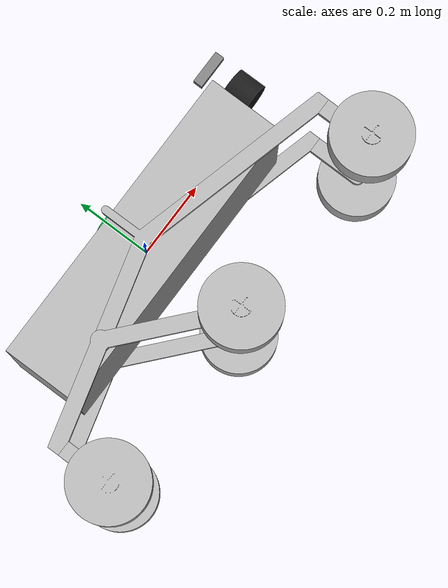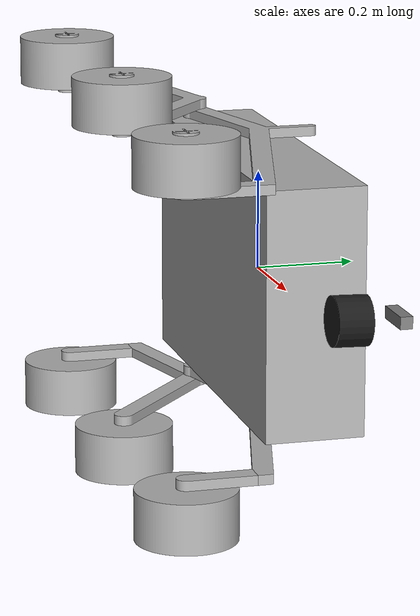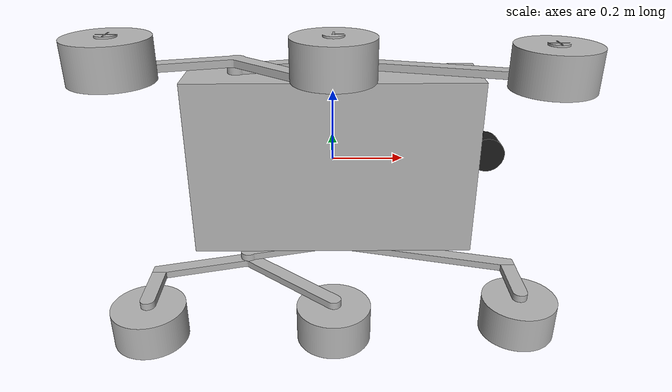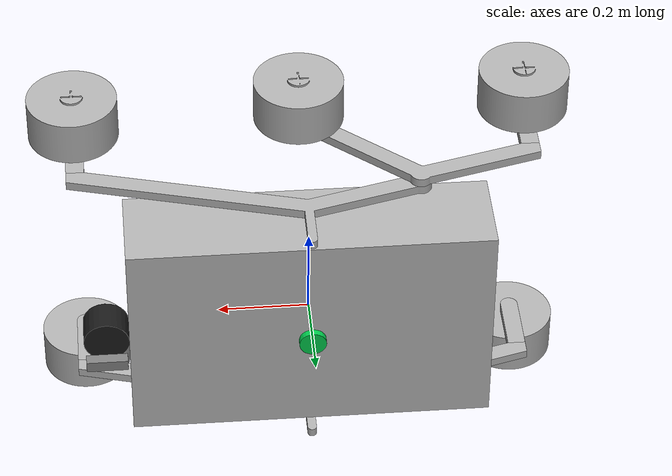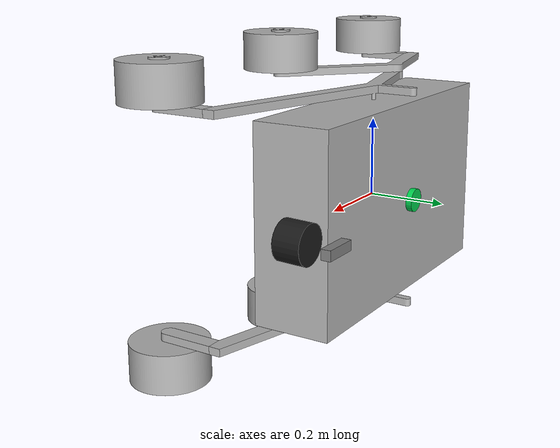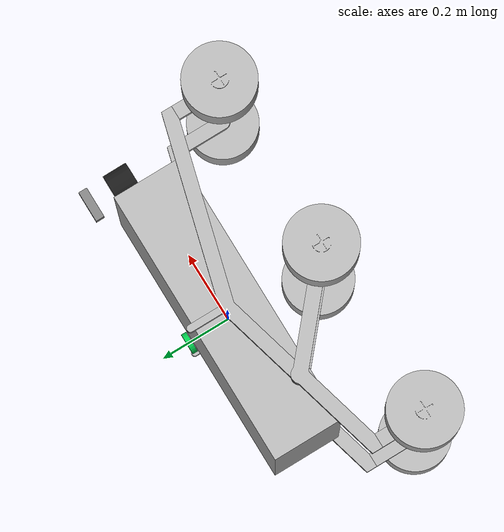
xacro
<?xml version="1.0" ?>
<robot name="mini_model" xmlns:xacro="http://www.ros.org/wiki/xacro">

<xacro:include filename="$(find mini_model_description)/urdf/materials.xacro" />
<xacro:include filename="$(find mini_model_description)/urdf/mini_model.gazebo" />

<!-- Include sensor definitions for autonomous navigation -->
<xacro:include filename="$(find mini_model_description)/urdf/sensors.xacro" />
<xacro:include filename="$(find mini_model_description)/urdf/sensors.gazebo" />

<link name="base_link">
  <inertial>
    <origin xyz="0.0 0.0 0.0" rpy="0 0 0"/>
    <mass value="628.0"/>
    <inertia ixx="15.176667" iyy="46.576667" izz="35.586667" ixy="0.0" iyz="0.0" ixz="0.0"/>
  </inertial>
  <visual>
    <origin xyz="0 0 0" rpy="0 0 0"/>
    <geometry>
      <mesh filename="file://$(find mini_model_description)/meshes/base_link.stl" scale="0.001 0.001 0.001"/>
    </geometry>
    <material name="silver"/>
  </visual>
  <collision>
    <origin xyz="0 0 0" rpy="0 0 0"/>
    <geometry>
      <mesh filename="file://$(find mini_model_description)/meshes/base_link.stl" scale="0.001 0.001 0.001"/>
    </geometry>
  </collision>
</link>

<link name="component__8__1">
  <inertial>
    <origin xyz="0.1134912204829699 -0.05030777295699913 0.029954747066772536" rpy="0 0 0"/>
    <mass value="5.449702499230522"/>
    <inertia ixx="0.013083" iyy="0.270388" izz="0.283097" ixy="0.036122" iyz="1.2e-05" ixz="-2.8e-05"/>
  </inertial>
  <visual>
    <origin xyz="-0.0 -0.0 -0.25" rpy="0 0 0"/>
    <geometry>
      <mesh filename="file://$(find mini_model_description)/meshes/component__8__1.stl" scale="0.001 0.001 0.001"/>
    </geometry>
    <material name="silver"/>
  </visual>
  <collision>
    <origin xyz="-0.0 -0.0 -0.25" rpy="0 0 0"/>
    <geometry>
      <mesh filename="file://$(find mini_model_description)/meshes/component__8__1.stl" scale="0.001 0.001 0.001"/>
    </geometry>
  </collision>
</link>

<link name="component__1__1">
  <inertial>
    <origin xyz="0.014564589996318489 -0.07826500014971428 0.010000000000000009" rpy="0 0 0"/>
    <mass value="3.923134667678356"/>
    <inertia ixx="0.016852" iyy="0.089659" izz="0.106249" ixy="0.027919" iyz="-0.0" ixz="0.0"/>
  </inertial>
  <visual>
    <origin xyz="0.25 0.066987 -0.29" rpy="0 0 0"/>
    <geometry>
      <mesh filename="file://$(find mini_model_description)/meshes/component__1__1.stl" scale="0.001 0.001 0.001"/>
    </geometry>
    <material name="silver"/>
  </visual>
  <collision>
    <origin xyz="0.25 0.066987 -0.29" rpy="0 0 0"/>
    <geometry>
      <mesh filename="file://$(find mini_model_description)/meshes/component__1__1.stl" scale="0.001 0.001 0.001"/>
    </geometry>
  </collision>
</link>

<link name="component__2__1">
  <inertial>
    <origin xyz="8.326672684688674e-16 -0.07524710992668415 0.0" rpy="0 0 0"/>
    <mass value="0.9442697396325618"/>
    <inertia ixx="0.00182" iyy="0.000154" izz="0.001911" ixy="0.0" iyz="-0.0" ixz="-0.0"/>
  </inertial>
  <visual>
    <origin xyz="0.5 0.149321 -0.3" rpy="0 0 0"/>
    <geometry>
      <mesh filename="file://$(find mini_model_description)/meshes/component__2__1.stl" scale="0.001 0.001 0.001"/>
    </geometry>
    <material name="silver"/>
  </visual>
  <collision>
    <origin xyz="0.5 0.149321 -0.3" rpy="0 0 0"/>
    <geometry>
      <mesh filename="file://$(find mini_model_description)/meshes/component__2__1.stl" scale="0.001 0.001 0.001"/>
    </geometry>
  </collision>
</link>

<link name="component__3__1">
  <inertial>
    <origin xyz="-1.3322676295501878e-15 -0.07524710992668368 0.0" rpy="0 0 0"/>
    <mass value="0.9442697396325564"/>
    <inertia ixx="0.00182" iyy="0.000154" izz="0.001911" ixy="0.0" iyz="0.0" ixz="0.0"/>
  </inertial>
  <visual>
    <origin xyz="-0.5 0.149321 -0.28" rpy="0 0 0"/>
    <geometry>
      <mesh filename="file://$(find mini_model_description)/meshes/component__3__1.stl" scale="0.001 0.001 0.001"/>
    </geometry>
    <material name="silver"/>
  </visual>
  <collision>
    <origin xyz="-0.5 0.149321 -0.28" rpy="0 0 0"/>
    <geometry>
      <mesh filename="file://$(find mini_model_description)/meshes/component__3__1.stl" scale="0.001 0.001 0.001"/>
    </geometry>
  </collision>
</link>

<link name="component__4__1">
  <inertial>
    <origin xyz="8.326672684688674e-16 4.037844391069356e-07 0.050132954214166414" rpy="0 0 0"/>
    <mass value="24.72411519366146"/>
    <inertia ixx="0.082388" iyy="0.082388" izz="0.123329" ixy="0.0" iyz="0.0" ixz="0.0"/>
  </inertial>
  <visual>
    <origin xyz="0.5 0.283975 -0.31" rpy="0 0 0"/>
    <geometry>
      <mesh filename="file://$(find mini_model_description)/meshes/component__4__1.stl" scale="0.001 0.001 0.001"/>
    </geometry>
    <material name="silver"/>
  </visual>
  <collision>
    <origin xyz="0.5 0.283975 -0.31" rpy="0 0 0"/>
    <geometry>
      <mesh filename="file://$(find mini_model_description)/meshes/component__4__1.stl" scale="0.001 0.001 0.001"/>
    </geometry>
  </collision>
</link>

<link name="component__5__1">
  <inertial>
    <origin xyz="-3.003187247395517e-16 4.0378443955102483e-07 0.050132954214166414" rpy="0 0 0"/>
    <mass value="24.724115193661465"/>
    <inertia ixx="0.082388" iyy="0.082388" izz="0.123329" ixy="0.0" iyz="0.0" ixz="0.0"/>
  </inertial>
  <visual>
    <origin xyz="0.0 0.283975 -0.31" rpy="0 0 0"/>
    <geometry>
      <mesh filename="file://$(find mini_model_description)/meshes/component__5__1.stl" scale="0.001 0.001 0.001"/>
    </geometry>
    <material name="silver"/>
  </visual>
  <collision>
    <origin xyz="0.0 0.283975 -0.31" rpy="0 0 0"/>
    <geometry>
      <mesh filename="file://$(find mini_model_description)/meshes/component__5__1.stl" scale="0.001 0.001 0.001"/>
    </geometry>
  </collision>
</link>

<link name="component__6__1">
  <inertial>
    <origin xyz="-1.4432899320127035e-15 4.037844399396029e-07 0.05013295421416647" rpy="0 0 0"/>
    <mass value="24.72411519366146"/>
    <inertia ixx="0.082388" iyy="0.082388" izz="0.123329" ixy="0.0" iyz="-0.0" ixz="0.0"/>
  </inertial>
  <visual>
    <origin xyz="-0.5 0.283975 -0.29" rpy="0 0 0"/>
    <geometry>
      <mesh filename="file://$(find mini_model_description)/meshes/component__6__1.stl" scale="0.001 0.001 0.001"/>
    </geometry>
    <material name="silver"/>
  </visual>
  <collision>
    <origin xyz="-0.5 0.283975 -0.29" rpy="0 0 0"/>
    <geometry>
      <mesh filename="file://$(find mini_model_description)/meshes/component__6__1.stl" scale="0.001 0.001 0.001"/>
    </geometry>
  </collision>
</link>

<link name="component__7__1">
  <inertial>
    <origin xyz="0.11349122048296997 -0.0503077729569992 -0.02995474706677259" rpy="0 0 0"/>
    <mass value="5.449702499230521"/>
    <inertia ixx="0.013083" iyy="0.270388" izz="0.283097" ixy="0.036122" iyz="-1.2e-05" ixz="2.8e-05"/>
  </inertial>
  <visual>
    <origin xyz="-0.0 -0.0 0.25" rpy="0 0 0"/>
    <geometry>
      <mesh filename="file://$(find mini_model_description)/meshes/component__7__1.stl" scale="0.001 0.001 0.001"/>
    </geometry>
    <material name="silver"/>
  </visual>
  <collision>
    <origin xyz="-0.0 -0.0 0.25" rpy="0 0 0"/>
    <geometry>
      <mesh filename="file://$(find mini_model_description)/meshes/component__7__1.stl" scale="0.001 0.001 0.001"/>
    </geometry>
  </collision>
</link>

<link name="component__9__1">
  <inertial>
    <origin xyz="0.014564589996318461 -0.07826500014971409 -0.010000000000000064" rpy="0 0 0"/>
    <mass value="3.9231346676783514"/>
    <inertia ixx="0.016852" iyy="0.089659" izz="0.106249" ixy="0.027919" iyz="0.0" ixz="0.0"/>
  </inertial>
  <visual>
    <origin xyz="0.25 0.066987 0.29" rpy="0 0 0"/>
    <geometry>
      <mesh filename="file://$(find mini_model_description)/meshes/component__9__1.stl" scale="0.001 0.001 0.001"/>
    </geometry>
    <material name="silver"/>
  </visual>
  <collision>
    <origin xyz="0.25 0.066987 0.29" rpy="0 0 0"/>
    <geometry>
      <mesh filename="file://$(find mini_model_description)/meshes/component__9__1.stl" scale="0.001 0.001 0.001"/>
    </geometry>
  </collision>
</link>

<link name="component__11__1">
  <inertial>
    <origin xyz="-1.3322676295501878e-15 -0.07524710992668368 0.0" rpy="0 0 0"/>
    <mass value="0.9442697396325564"/>
    <inertia ixx="0.00182" iyy="0.000154" izz="0.001911" ixy="0.0" iyz="0.0" ixz="-0.0"/>
  </inertial>
  <visual>
    <origin xyz="-0.5 0.149321 0.28" rpy="0 0 0"/>
    <geometry>
      <mesh filename="file://$(find mini_model_description)/meshes/component__11__1.stl" scale="0.001 0.001 0.001"/>
    </geometry>
    <material name="silver"/>
  </visual>
  <collision>
    <origin xyz="-0.5 0.149321 0.28" rpy="0 0 0"/>
    <geometry>
      <mesh filename="file://$(find mini_model_description)/meshes/component__11__1.stl" scale="0.001 0.001 0.001"/>
    </geometry>
  </collision>
</link>

<link name="component__10__1">
  <inertial>
    <origin xyz="8.326672684688674e-16 -0.07524710992668415 0.0" rpy="0 0 0"/>
    <mass value="0.9442697396325618"/>
    <inertia ixx="0.00182" iyy="0.000154" izz="0.001911" ixy="0.0" iyz="-0.0" ixz="0.0"/>
  </inertial>
  <visual>
    <origin xyz="0.5 0.149321 0.3" rpy="0 0 0"/>
    <geometry>
      <mesh filename="file://$(find mini_model_description)/meshes/component__10__1.stl" scale="0.001 0.001 0.001"/>
    </geometry>
    <material name="silver"/>
  </visual>
  <collision>
    <origin xyz="0.5 0.149321 0.3" rpy="0 0 0"/>
    <geometry>
      <mesh filename="file://$(find mini_model_description)/meshes/component__10__1.stl" scale="0.001 0.001 0.001"/>
    </geometry>
  </collision>
</link>

<link name="component__14__1">
  <inertial>
    <origin xyz="6.772360450213455e-15 4.037844399396029e-07 -0.05013295421416647" rpy="0 0 0"/>
    <mass value="24.72411519366147"/>
    <inertia ixx="0.082388" iyy="0.082388" izz="0.123329" ixy="0.0" iyz="0.0" ixz="0.0"/>
  </inertial>
  <visual>
    <origin xyz="-0.5 0.283975 0.29" rpy="0 0 0"/>
    <geometry>
      <mesh filename="file://$(find mini_model_description)/meshes/component__14__1.stl" scale="0.001 0.001 0.001"/>
    </geometry>
    <material name="silver"/>
  </visual>
  <collision>
    <origin xyz="-0.5 0.283975 0.29" rpy="0 0 0"/>
    <geometry>
      <mesh filename="file://$(find mini_model_description)/meshes/component__14__1.stl" scale="0.001 0.001 0.001"/>
    </geometry>
  </collision>
</link>

<link name="component__13__1">
  <inertial>
    <origin xyz="7.866040444139796e-15 4.03784439606536e-07 -0.050132954214166414" rpy="0 0 0"/>
    <mass value="24.724115193661465"/>
    <inertia ixx="0.082388" iyy="0.082388" izz="0.123329" ixy="0.0" iyz="-0.0" ixz="0.0"/>
  </inertial>
  <visual>
    <origin xyz="0.0 0.283975 0.31" rpy="0 0 0"/>
    <geometry>
      <mesh filename="file://$(find mini_model_description)/meshes/component__13__1.stl" scale="0.001 0.001 0.001"/>
    </geometry>
    <material name="silver"/>
  </visual>
  <collision>
    <origin xyz="0.0 0.283975 0.31" rpy="0 0 0"/>
    <geometry>
      <mesh filename="file://$(find mini_model_description)/meshes/component__13__1.stl" scale="0.001 0.001 0.001"/>
    </geometry>
  </collision>
</link>

<link name="component__12__1">
  <inertial>
    <origin xyz="9.048317650695026e-15 4.0378443905142447e-07 -0.050132954214166525" rpy="0 0 0"/>
    <mass value="24.72411519366147"/>
    <inertia ixx="0.082388" iyy="0.082388" izz="0.123329" ixy="0.0" iyz="0.0" ixz="0.0"/>
  </inertial>
  <visual>
    <origin xyz="0.5 0.283975 0.31" rpy="0 0 0"/>
    <geometry>
      <mesh filename="file://$(find mini_model_description)/meshes/component__12__1.stl" scale="0.001 0.001 0.001"/>
    </geometry>
    <material name="silver"/>
  </visual>
  <collision>
    <origin xyz="0.5 0.283975 0.31" rpy="0 0 0"/>
    <geometry>
      <mesh filename="file://$(find mini_model_description)/meshes/component__12__1.stl" scale="0.001 0.001 0.001"/>
    </geometry>
  </collision>
</link>

<joint name="Revolute 25" type="revolute">
  <origin xyz="0.0 0.0 0.25" rpy="0 0 0"/>
  <parent link="base_link"/>
  <child link="component__8__1"/>
  <axis xyz="0.0 0.0 1.0"/>
  <limit upper="0.523599" lower="-0.523599" effort="100" velocity="100"/>
</joint>

<joint name="Revolute 26" type="revolute">
  <origin xyz="-0.25 -0.066987 0.04" rpy="0 0 0"/>
  <parent link="component__8__1"/>
  <child link="component__1__1"/>
  <axis xyz="0.0 0.0 1.0"/>
  <limit upper="0.523599" lower="-0.523599" effort="100" velocity="100"/>
</joint>

<joint name="Revolute 27" type="revolute">
  <origin xyz="-0.25 -0.082334 0.01" rpy="0 0 0"/>
  <parent link="component__1__1"/>
  <child link="component__2__1"/>
  <axis xyz="0.0 -1.0 0.0"/>
  <limit upper="0.785398" lower="-0.785398" effort="500" velocity="100"/>
  <dynamics damping="50.0" friction="3.5"/>
</joint>

<joint name="Revolute 28" type="revolute">
  <origin xyz="0.5 -0.149321 0.03" rpy="0 0 0"/>
  <parent link="component__8__1"/>
  <child link="component__3__1"/>
  <axis xyz="0.0 -1.0 0.0"/>
  <limit upper="0.785398" lower="-0.785398" effort="500" velocity="100"/>
  <dynamics damping="50.0" friction="3.5"/>
</joint>

<joint name="Revolute 29" type="continuous">
  <origin xyz="0.0 -0.134654 0.01" rpy="0 0 0"/>
  <parent link="component__2__1"/>
  <child link="component__4__1"/>
  <axis xyz="0.0 0.0 1.0"/>
</joint>

<joint name="Revolute 30" type="continuous">
  <origin xyz="0.25 -0.216988 0.02" rpy="0 0 0"/>
  <parent link="component__1__1"/>
  <child link="component__5__1"/>
  <axis xyz="0.0 0.0 1.0"/>
</joint>

<joint name="Revolute 31" type="continuous">
  <origin xyz="0.0 -0.134654 0.01" rpy="0 0 0"/>
  <parent link="component__3__1"/>
  <child link="component__6__1"/>
  <axis xyz="0.0 0.0 1.0"/>
</joint>

<joint name="Revolute 32" type="revolute">
  <origin xyz="0.0 0.0 -0.25" rpy="0 0 0"/>
  <parent link="base_link"/>
  <child link="component__7__1"/>
  <axis xyz="0.0 0.0 -1.0"/>
  <limit upper="0.523599" lower="-0.523599" effort="100" velocity="100"/>
</joint>

<joint name="Revolute 33" type="revolute">
  <origin xyz="-0.25 -0.066987 -0.04" rpy="0 0 0"/>
  <parent link="component__7__1"/>
  <child link="component__9__1"/>
  <axis xyz="0.0 0.0 -1.0"/>
  <limit upper="0.523599" lower="-0.523599" effort="100" velocity="100"/>
</joint>

<joint name="Revolute 34" type="revolute">
  <origin xyz="0.5 -0.149321 -0.03" rpy="0 0 0"/>
  <parent link="component__7__1"/>
  <child link="component__11__1"/>
  <axis xyz="0.0 -1.0 0.0"/>
  <limit upper="0.785398" lower="-0.785398" effort="500" velocity="100"/>
  <dynamics damping="50.0" friction="3.5"/>
</joint>

<joint name="Revolute 35" type="revolute">
  <origin xyz="-0.25 -0.082334 -0.01" rpy="0 0 0"/>
  <parent link="component__9__1"/>
  <child link="component__10__1"/>
  <axis xyz="0.0 -1.0 0.0"/>
  <limit upper="0.785398" lower="-0.785398" effort="500" velocity="100"/>
  <dynamics damping="50.0" friction="3.5"/>
</joint>

<joint name="Revolute 36" type="continuous">
  <origin xyz="0.0 -0.134654 -0.01" rpy="0 0 0"/>
  <parent link="component__11__1"/>
  <child link="component__14__1"/>
  <axis xyz="0.0 0.0 -1.0"/>
</joint>

<joint name="Revolute 37" type="continuous">
  <origin xyz="0.25 -0.216988 -0.02" rpy="0 0 0"/>
  <parent link="component__9__1"/>
  <child link="component__13__1"/>
  <axis xyz="0.0 0.0 -1.0"/>
</joint>

<joint name="Revolute 38" type="continuous">
  <origin xyz="0.0 -0.134654 -0.01" rpy="0 0 0"/>
  <parent link="component__10__1"/>
  <child link="component__12__1"/>
  <axis xyz="0.0 0.0 -1.0"/>
</joint>

<!-- ROS 2 Control Hardware Interface -->
<ros2_control name="GazeboSimSystem" type="system">
  <hardware>
    <plugin>gz_ros2_control/GazeboSimSystem</plugin>
  </hardware>

  <!-- PASSIVE SUSPENSION JOINTS (State Interface Only) -->
  <!-- Right Differential Joint -->
  <joint name="Revolute 25">
    <command_interface name="position">
      <param name="min">-0.523599</param>
      <param name="max">0.523599</param>
    </command_interface>
    <state_interface name="position"/>
    <state_interface name="velocity"/>
  </joint>

  <!-- Right Bogie Pivot Joint -->
  <joint name="Revolute 26">
    <command_interface name="position">
      <param name="min">-0.523599</param>
      <param name="max">0.523599</param>
    </command_interface>
    <state_interface name="position"/>
    <state_interface name="velocity"/>
  </joint>

  <!-- Left Differential Joint -->
  <joint name="Revolute 32">
    <command_interface name="position">
      <param name="min">-0.523599</param>
      <param name="max">0.523599</param>
    </command_interface>
    <state_interface name="position"/>
    <state_interface name="velocity"/>
  </joint>

  <!-- Left Bogie Pivot Joint -->
  <joint name="Revolute 33">
    <command_interface name="position">
      <param name="min">-0.523599</param>
      <param name="max">0.523599</param>
    </command_interface>
    <state_interface name="position"/>
    <state_interface name="velocity"/>
  </joint>

  <!-- STEERING JOINTS (Position Command Interface) -->
  <!-- Rear Right Wheel Steering -->
  <joint name="Revolute 27">
    <command_interface name="position">
      <param name="min">-0.785398</param>
      <param name="max">0.785398</param>
      <param name="p">80.0</param>
      <param name="i">1.5</param>
      <param name="d">10.0</param>
    </command_interface>
    <state_interface name="position"/>
    <state_interface name="velocity"/>
  </joint>

  <!-- Front Right Wheel Steering -->
  <joint name="Revolute 28">
    <command_interface name="position">
      <param name="min">-0.785398</param>
      <param name="max">0.785398</param>
      <param name="p">80.0</param>
      <param name="i">1.5</param>
      <param name="d">10.0</param>
    </command_interface>
    <state_interface name="position"/>
    <state_interface name="velocity"/>
  </joint>

  <!-- Front Left Wheel Steering -->
  <joint name="Revolute 34">
    <command_interface name="position">
      <param name="min">-0.785398</param>
      <param name="max">0.785398</param>
      <param name="p">80.0</param>
      <param name="i">1.5</param>
      <param name="d">10.0</param>
    </command_interface>
    <state_interface name="position"/>
    <state_interface name="velocity"/>
  </joint>

  <!-- Rear Left Wheel Steering -->
  <joint name="Revolute 35">
    <command_interface name="position">
      <param name="min">-0.785398</param>
      <param name="max">0.785398</param>
      <param name="p">80.0</param>
      <param name="i">1.5</param>
      <param name="d">10.0</param>
    </command_interface>
    <state_interface name="position"/>
    <state_interface name="velocity"/>
  </joint>

  <!-- DRIVE JOINTS (Velocity Command Interface) -->
  <!-- Rear Right Wheel Drive -->
  <joint name="Revolute 29">
    <command_interface name="velocity">
      <param name="min">-50.0</param>
      <param name="max">50.0</param>
    </command_interface>
    <state_interface name="position"/>
    <state_interface name="velocity"/>
  </joint>

  <!-- Middle Right Wheel Drive -->
  <joint name="Revolute 30">
    <command_interface name="velocity">
      <param name="min">-50.0</param>
      <param name="max">50.0</param>
    </command_interface>
    <state_interface name="position"/>
    <state_interface name="velocity"/>
  </joint>

  <!-- Front Right Wheel Drive -->
  <joint name="Revolute 31">
    <command_interface name="velocity">
      <param name="min">-50.0</param>
      <param name="max">50.0</param>
    </command_interface>
    <state_interface name="position"/>
    <state_interface name="velocity"/>
  </joint>

  <!-- Front Left Wheel Drive -->
  <joint name="Revolute 36">
    <command_interface name="velocity">
      <param name="min">-50.0</param>
      <param name="max">50.0</param>
    </command_interface>
    <state_interface name="position"/>
    <state_interface name="velocity"/>
  </joint>

  <!-- Middle Left Wheel Drive -->
  <joint name="Revolute 37">
    <command_interface name="velocity">
      <param name="min">-50.0</param>
      <param name="max">50.0</param>
    </command_interface>
    <state_interface name="position"/>
    <state_interface name="velocity"/>
  </joint>

  <!-- Rear Left Wheel Drive -->
  <joint name="Revolute 38">
    <command_interface name="velocity">
      <param name="min">-50.0</param>
      <param name="max">50.0</param>
    </command_interface>
    <state_interface name="position"/>
    <state_interface name="velocity"/>
  </joint>
</ros2_control>

<!-- Gazebo ROS 2 Control Plugin -->
<gazebo>
  <plugin filename="gz_ros2_control-system" name="gz_ros2_control::GazeboSimROS2ControlPlugin">
    <parameters>$(find mini_model_control)/config/rover_controllers.yaml</parameters>
    <controller_manager_name>controller_manager</controller_manager_name>
    <hold_joints>true</hold_joints>
    <position_proportional_gain>0.1</position_proportional_gain>
  </plugin>
</gazebo>

<!-- Attach all autonomous navigation sensors to base_link -->
<xacro:sensors_macro parent="base_link"/>

</robot>

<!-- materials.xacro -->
<robot name="mini_model" xmlns:xacro="http://www.ros.org/wiki/xacro" >

<material name="silver">
  <color rgba="0.700 0.700 0.700 1.000"/>
</material>

<!-- Sensor Materials -->
<material name="camera_gray">
  <color rgba="0.5 0.5 0.5 1.0"/>
</material>

<material name="lidar_black">
  <color rgba="0.1 0.1 0.1 1.0"/>
</material>

<material name="imu_blue">
  <color rgba="0.0 0.3 0.8 1.0"/>
</material>

<material name="gps_green">
  <color rgba="0.0 0.8 0.3 1.0"/>
</material>

</robot>

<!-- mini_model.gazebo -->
<robot name="mini_model" xmlns:xacro="http://www.ros.org/wiki/xacro" >

<xacro:property name="body_color" value="Gazebo/Silver" />

<gazebo reference="base_link">
  <material>${body_color}</material>
  <mu1>0.2</mu1>
  <mu2>0.2</mu2>
  <self_collide>true</self_collide>
  <gravity>true</gravity>
</gazebo>

<gazebo reference="component__8__1">
  <material>${body_color}</material>
  <mu1>2.0</mu1>
  <mu2>2.0</mu2>
  <slip1>0.0</slip1>
  <slip2>0.0</slip2>
  <self_collide>true</self_collide>
</gazebo>

<gazebo reference="component__1__1">
  <material>${body_color}</material>
  <mu1>2.0</mu1>
  <mu2>2.0</mu2>
  <slip1>0.0</slip1>
  <slip2>0.0</slip2>
  <self_collide>true</self_collide>
</gazebo>

<gazebo reference="component__2__1">
  <material>${body_color}</material>
  <mu1>2.0</mu1>
  <mu2>2.0</mu2>
  <slip1>0.0</slip1>
  <slip2>0.0</slip2>
  <self_collide>true</self_collide>
</gazebo>

<gazebo reference="component__3__1">
  <material>${body_color}</material>
  <mu1>2.0</mu1>
  <mu2>2.0</mu2>
  <slip1>0.0</slip1>
  <slip2>0.0</slip2>
  <self_collide>true</self_collide>
</gazebo>

<gazebo reference="component__4__1">
  <material>${body_color}</material>
  <mu1>2.0</mu1>
  <mu2>2.0</mu2>
  <slip1>0.0</slip1>
  <slip2>0.0</slip2>
  <self_collide>true</self_collide>
</gazebo>

<gazebo reference="component__5__1">
  <material>${body_color}</material>
  <mu1>2.0</mu1>
  <mu2>2.0</mu2>
  <slip1>0.0</slip1>
  <slip2>0.0</slip2>
  <self_collide>true</self_collide>
</gazebo>

<gazebo reference="component__6__1">
  <material>${body_color}</material>
  <mu1>2.0</mu1>
  <mu2>2.0</mu2>
  <slip1>0.0</slip1>
  <slip2>0.0</slip2>
  <self_collide>true</self_collide>
</gazebo>

<gazebo reference="component__7__1">
  <material>${body_color}</material>
  <mu1>2.0</mu1>
  <mu2>2.0</mu2>
  <slip1>0.0</slip1>
  <slip2>0.0</slip2>
  <self_collide>true</self_collide>
</gazebo>

<gazebo reference="component__9__1">
  <material>${body_color}</material>
  <mu1>2.0</mu1>
  <mu2>2.0</mu2>
  <slip1>0.0</slip1>
  <slip2>0.0</slip2>
  <self_collide>true</self_collide>
</gazebo>

<gazebo reference="component__11__1">
  <material>${body_color}</material>
  <mu1>2.0</mu1>
  <mu2>2.0</mu2>
  <slip1>0.0</slip1>
  <slip2>0.0</slip2>
  <self_collide>true</self_collide>
</gazebo>

<gazebo reference="component__10__1">
  <material>${body_color}</material>
  <mu1>2.0</mu1>
  <mu2>2.0</mu2>
  <slip1>0.0</slip1>
  <slip2>0.0</slip2>
  <self_collide>true</self_collide>
</gazebo>

<gazebo reference="component__14__1">
  <material>${body_color}</material>
  <mu1>2.0</mu1>
  <mu2>2.0</mu2>
  <slip1>0.0</slip1>
  <slip2>0.0</slip2>
  <self_collide>true</self_collide>
</gazebo>

<gazebo reference="component__13__1">
  <material>${body_color}</material>
  <mu1>2.0</mu1>
  <mu2>2.0</mu2>
  <slip1>0.0</slip1>
  <slip2>0.0</slip2>
  <self_collide>true</self_collide>
</gazebo>

<gazebo reference="component__12__1">
  <material>${body_color}</material>
  <mu1>2.0</mu1>
  <mu2>2.0</mu2>
  <slip1>0.0</slip1>
  <slip2>0.0</slip2>
  <self_collide>true</self_collide>
</gazebo>

</robot>

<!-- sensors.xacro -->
<robot xmlns:xacro="http://www.ros.org/wiki/xacro">

<xacro:macro name="sensors_macro" params="parent">

  <!-- INTEL REALSENSE D435i RGB-D CAMERA           -->

  <!-- Camera Link (Housing) -->
  <link name="camera_link">
    <inertial>
      <mass value="0.072"/> <!-- 72g actual weight -->
      <origin xyz="0 0 0" rpy="0 0 0"/>
      <inertia ixx="0.0001" ixy="0.0" ixz="0.0"
               iyy="0.0001" iyz="0.0" izz="0.0001"/>
    </inertial>
    <visual>
      <origin xyz="0 0 0" rpy="0 0 0"/>
      <geometry>
        <!-- Actual D435i dimensions: 90mm x 25mm x 25mm -->
        <box size="0.09 0.025 0.025"/>
      </geometry>
      <material name="camera_gray"/>
    </visual>
    <collision>
      <origin xyz="0 0 0" rpy="0 0 0"/>
      <geometry>
        <box size="0.09 0.025 0.025"/>
      </geometry>
    </collision>
  </link>

  <!-- Attach camera to front of rover, elevated for better view -->
  <joint name="camera_joint" type="fixed">
    <parent link="${parent}"/>
    <child link="camera_link"/>
    <origin xyz="0.45 0.15 0" rpy="0 0 0"/>
  </joint>

  <!-- Optical frame (ROS convention: Z forward, Y down, X right) -->
  <link name="camera_optical_frame"/>

  <joint name="camera_optical_joint" type="fixed">
    <parent link="camera_link"/>
    <child link="camera_optical_frame"/>
    <origin xyz="0 0 0" rpy="0.0707963267948966 0.0 0.0"/>
  </joint>

  <!-- Camera Depth Optical Frame -->
  <link name="camera_depth_frame"/>

  <joint name="camera_depth_joint" type="fixed">
    <parent link="camera_link"/>
    <child link="camera_depth_frame"/>
    <origin xyz="0 0 0" rpy="0.0707963267948966 0.0 0.0"/>
  </joint>

  <!-- HOKUYO UST-10LX 2D LIDAR (270° Wide Angle)   -->

  <link name="laser_link">
    <inertial>
      <mass value="0.130"/> <!-- 130g typical weight -->
      <origin xyz="0 0 0" rpy="0 0 0"/>
      <inertia ixx="0.0001" ixy="0.0" ixz="0.0"
               iyy="0.0001" iyz="0.0" izz="0.0001"/>
    </inertial>
    <visual>
      <origin xyz="0 0 0" rpy="0 0 0"/>
      <geometry>
        <!-- Cylindrical shape: 50mm diameter, 70mm height -->
        <cylinder radius="0.05" length="0.07"/>
      </geometry>
      <material name="lidar_black"/>
    </visual>
    <collision>
      <origin xyz="0 0 0" rpy="0 0 0"/>
      <geometry>
        <cylinder radius="0.05" length="0.07"/>
      </geometry>
    </collision>
  </link>

  <!-- Mount LiDAR on top center for 360° unobstructed view -->
  <joint name="laser_joint" type="fixed">
    <parent link="${parent}"/>
    <child link="laser_link"/>
    <origin xyz="0.45 0.05 0.0" rpy="1.54 0 0"/>
  </joint>

  <!-- STANDALONE IMU (9-DOF)                       -->

  <link name="imu_link">
    <inertial>
      <mass value="0.050"/> <!-- 50g typical -->
      <origin xyz="0 0 0" rpy="0 0 0"/>
      <inertia ixx="0.00001" ixy="0.0" ixz="0.0"
               iyy="0.00001" iyz="0.0" izz="0.00001"/>
    </inertial>
    <visual>
      <origin xyz="0 0 0" rpy="0 0 0"/>
      <geometry>
        <box size="0.03 0.03 0.01"/>
      </geometry>
      <material name="imu_blue"/>
    </visual>
    <collision>
      <origin xyz="0 0 0" rpy="0 0 0"/>
      <geometry>
        <box size="0.03 0.03 0.01"/>
      </geometry>
    </collision>
  </link>

  <!-- Place IMU at center of base_link for accurate orientation -->
  <joint name="imu_joint" type="fixed">
    <parent link="${parent}"/>
    <child link="imu_link"/>
    <origin xyz="0.0 0.0 0.0" rpy="0 0 0"/>
  </joint>

  <!-- RTK-GPS (High-Precision Positioning)         -->

  <link name="gps_link">
    <inertial>
      <mass value="0.020"/> <!-- 20g typical -->
      <origin xyz="0 0 0" rpy="0 0 0"/>
      <inertia ixx="0.00001" ixy="0.0" ixz="0.0"
               iyy="0.00001" iyz="0.0" izz="0.00001"/>
    </inertial>
    <visual>
      <origin xyz="0 0 0" rpy="0 0 0"/>
      <geometry>
        <!-- GPS antenna: 30mm diameter, 15mm height -->
        <cylinder radius="0.03" length="0.015"/>
      </geometry>
      <material name="gps_green"/>
    </visual>
    <collision>
      <origin xyz="0 0 0" rpy="0 0 0"/>
      <geometry>
        <cylinder radius="0.03" length="0.015"/>
      </geometry>
    </collision>
  </link>

  <!-- Mount GPS at highest point for best satellite visibility -->
  <joint name="gps_joint" type="fixed">
    <parent link="${parent}"/>
    <child link="gps_link"/>
    <origin xyz="0.0 0.12 0" rpy="1.54 0 0"/>
  </joint>

</xacro:macro>

</robot>
